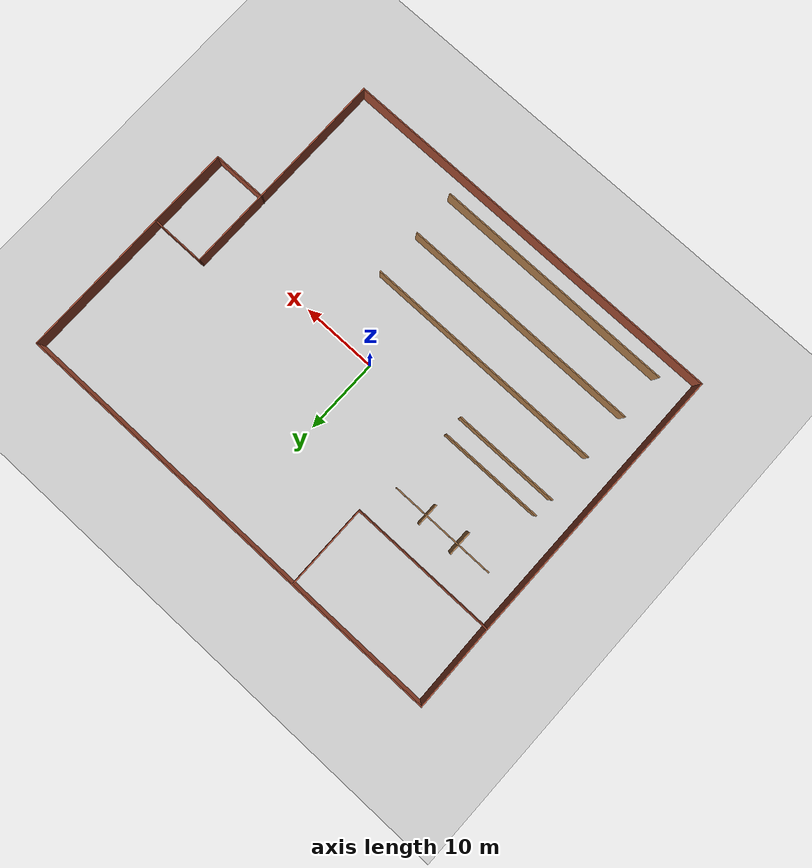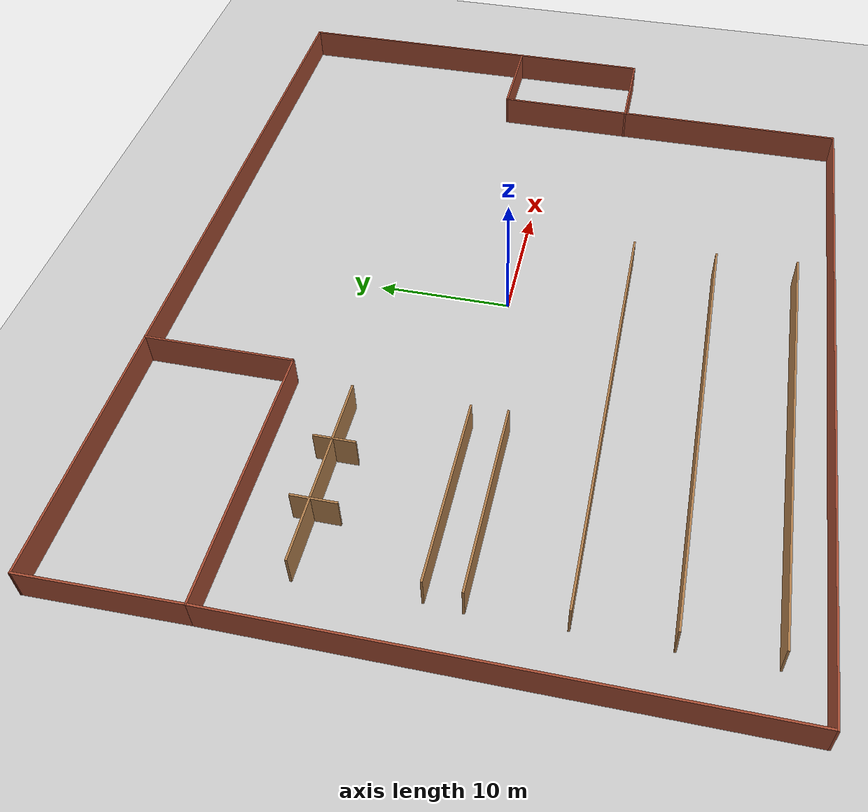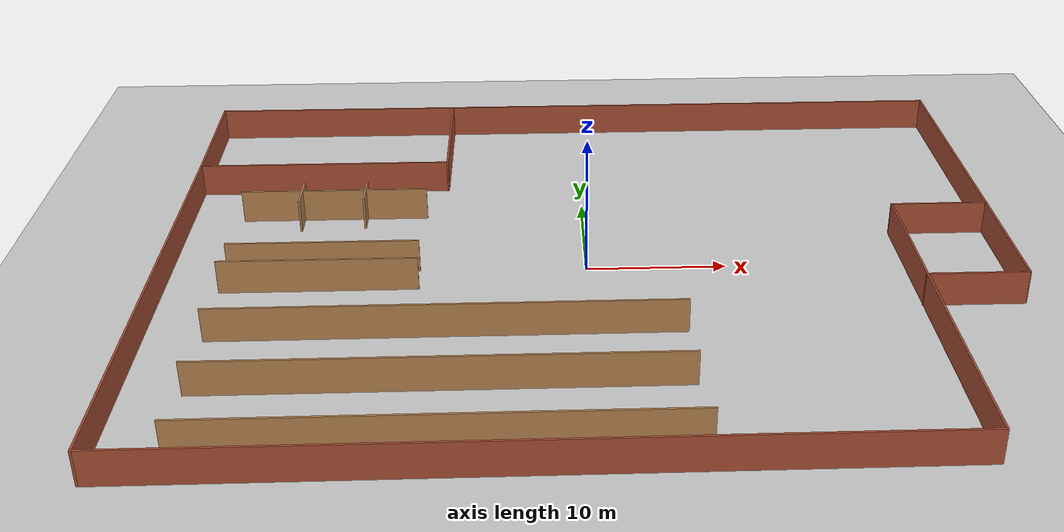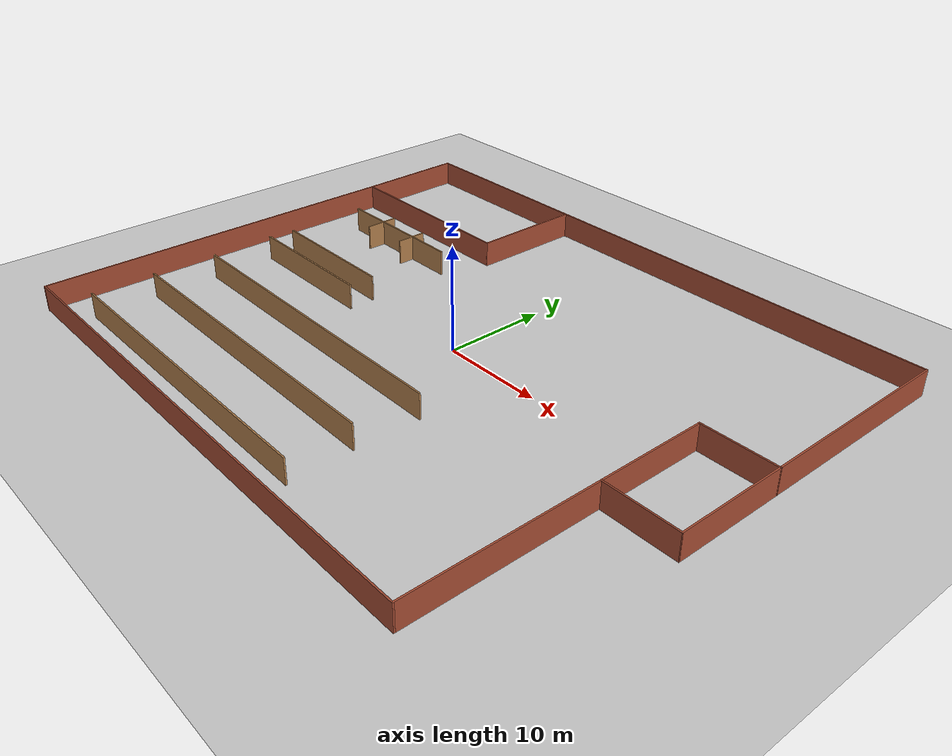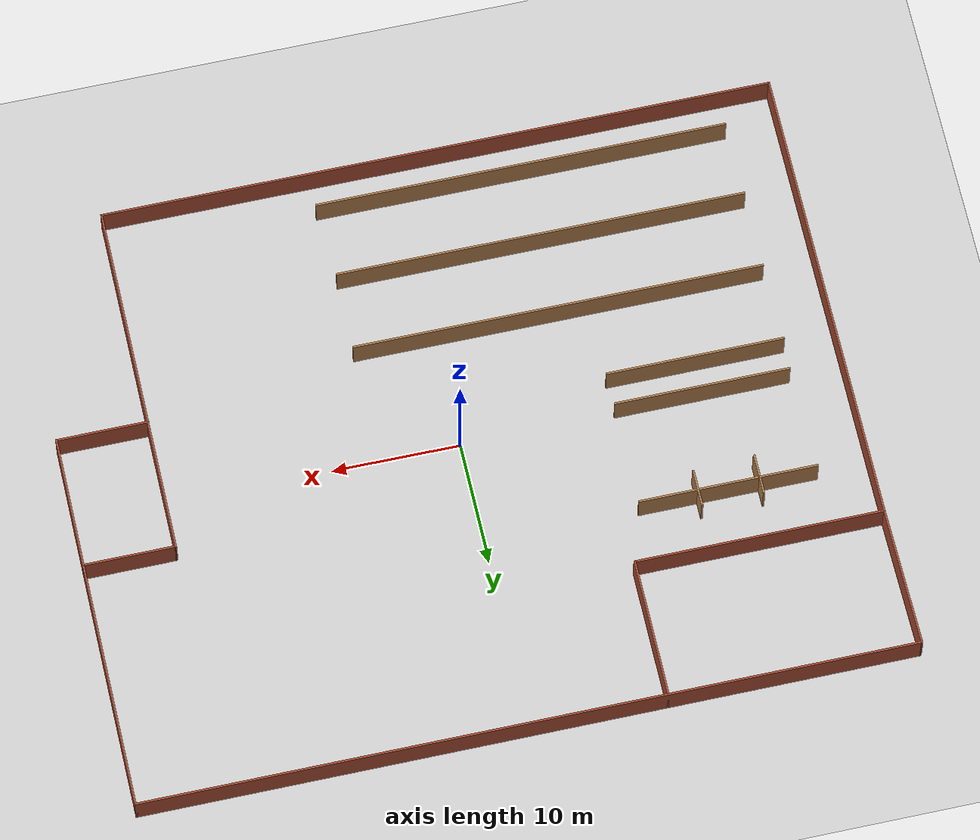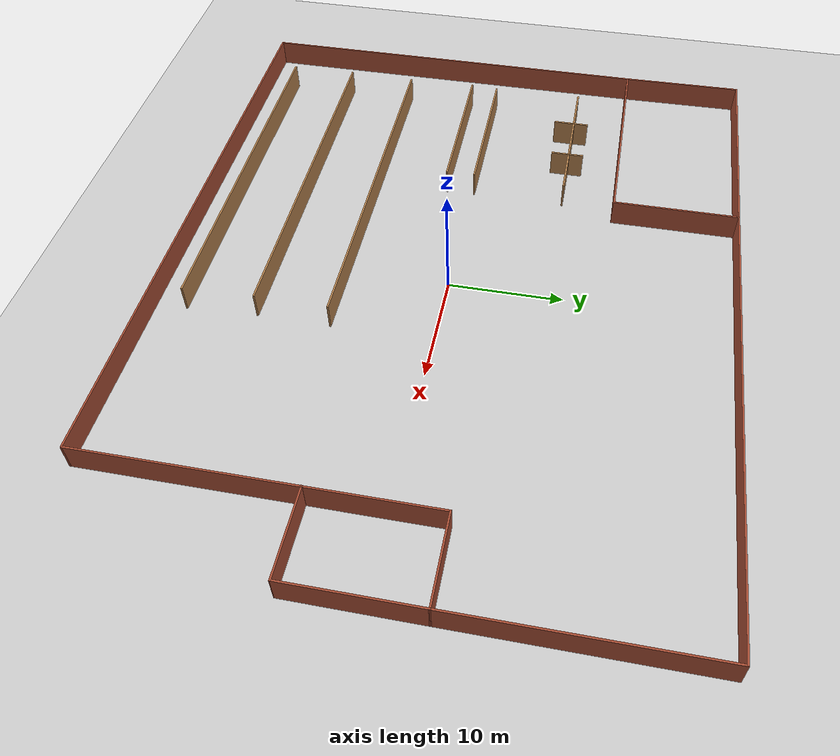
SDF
<sdf version="1.7">
 <world name="default">
  <light name="sun" type="directional">
   <pose>0 0 10 0 -0 0</pose>
   <diffuse>0.8 0.8 0.8 1</diffuse>
   <specular>0.2 0.2 0.2 1</specular>
   <attenuation>
    <range>1000</range>
    <constant>0.9</constant>
    <linear>0.01</linear>
    <quadratic>0.001</quadratic>
   </attenuation>
   <direction>-0.5 0.1 -0.9</direction>
  </light>
  <model name="ground_plane">
   <static>1</static>
   <link name="link">
    <collision name="collision">
     <geometry><plane><normal>0 0 1</normal><size>100 100</size></plane></geometry>
     <surface><friction><ode><mu>100</mu><mu2>50</mu2></ode></friction></surface>
    </collision>
    <visual name="visual">
     <cast_shadows>0</cast_shadows>
     <geometry><plane><normal>0 0 1</normal><size>100 100</size></plane></geometry>
     <material>
      <script><uri>file://media/materials/scripts/gazebo.material</uri><name>Gazebo/Grey</name></script>
     </material>
    </visual>
   </link>
  </model>
  <gravity>0 0 -9.8</gravity>
  <magnetic_field>6e-06 2.3e-05 -4.2e-05</magnetic_field>
  <atmosphere type="adiabatic"/>
  <physics type="ode">
   <max_step_size>0.001</max_step_size>
   <real_time_factor>1</real_time_factor>
   <real_time_update_rate>1000</real_time_update_rate>
  </physics>
  <scene><ambient>0.4 0.4 0.4 1</ambient><background>0.7 0.7 0.7 1</background><shadows>1</shadows></scene>
  <spherical_coordinates>
   <surface_model>EARTH_WGS84</surface_model>
   <latitude_deg>0</latitude_deg>
   <longitude_deg>0</longitude_deg>
   <elevation>0</elevation>
   <heading_deg>0</heading_deg>
  </spherical_coordinates>
  <model name="simple_world">
   <pose>0.039826 0.211408 0 0 -0 0</pose>
   <link name="Wall_0">
    <collision name="Wall_0_Collision">
     <geometry><box><size>60.25 0.15 2.5</size></box></geometry>
     <pose>0 0 1.25 0 -0 0</pose>
    </collision>
    <visual name="Wall_0_Visual">
     <pose>0 0 1.25 0 -0 0</pose>
     <geometry><box><size>60.25 0.15 2.5</size></box></geometry>
     <material>
      <script><uri>file://media/materials/scripts/gazebo.material</uri><name>Gazebo/Bricks</name></script>
      <ambient>1 1 1 1</ambient>
     </material>
     <meta><layer>0</layer></meta>
    </visual>
    <pose>0.000416 24.2245 0 0 -0 0</pose>
   </link>
   <link name="Wall_1">
    <collision name="Wall_1_Collision">
     <geometry><box><size>20 0.15 2.5</size></box></geometry>
     <pose>0 0 1.25 0 -0 0</pose>
    </collision>
    <visual name="Wall_1_Visual">
     <pose>0 0 1.25 0 -0 0</pose>
     <geometry><box><size>20 0.15 2.5</size></box></geometry>
     <material>
      <script><uri>file://media/materials/scripts/gazebo.material</uri><name>Gazebo/Bricks</name></script>
      <ambient>1 1 1 1</ambient>
     </material>
     <meta><layer>0</layer></meta>
    </visual>
    <pose>30.0504 14.2995 0 0 -0 -1.5708</pose>
   </link>
   <link name="Wall_11">
    <collision name="Wall_11_Collision">
     <geometry><box><size>7.25 0.15 2.5</size></box></geometry>
     <pose>0 0 1.25 0 -0 0</pose>
    </collision>
    <visual name="Wall_11_Visual">
     <pose>0 0 1.25 0 -0 0</pose>
     <geometry><box><size>7.25 0.15 2.5</size></box></geometry>
     <material>
      <script><uri>file://media/materials/scripts/gazebo.material</uri><name>Gazebo/Bricks</name></script>
      <ambient>1 1 1 1</ambient>
     </material>
     <meta><layer>0</layer></meta>
    </visual>
    <pose>26.4759 -6.2318 0 0 -0 0</pose>
   </link>
   <link name="Wall_12">
    <collision name="Wall_12_Collision">
     <geometry><box><size>10.7563 0.15 2.5</size></box></geometry>
     <pose>0 0 1.25 0 -0 0</pose>
    </collision>
    <visual name="Wall_12_Visual">
     <pose>0 0 1.25 0 -0 0</pose>
     <geometry><box><size>10.7563 0.15 2.5</size></box></geometry>
     <material>
      <script><uri>file://media/materials/scripts/gazebo.material</uri><name>Gazebo/Bricks</name></script>
      <ambient>1 1 1 1</ambient>
     </material>
     <meta><layer>0</layer></meta>
    </visual>
    <pose>30.0382 -0.928652 0 0 -0 1.56849</pose>
   </link>
   <link name="Wall_14">
    <collision name="Wall_14_Collision">
     <geometry><box><size>14 0.15 2.5</size></box></geometry>
     <pose>0 0 1.25 0 -0 0</pose>
    </collision>
    <visual name="Wall_14_Visual">
     <pose>0 0 1.25 0 -0 0</pose>
     <geometry><box><size>14 0.15 2.5</size></box></geometry>
     <material>
      <script><uri>file://media/materials/scripts/gazebo.material</uri><name>Gazebo/Wood</name></script>
      <ambient>1 1 1 1</ambient>
     </material>
     <meta><layer>0</layer></meta>
    </visual>
    <pose>-18.9407 8.35031 0 0 -0 0</pose>
   </link>
   <link name="Wall_16">
    <collision name="Wall_16_Collision">
     <geometry><box><size>3.25 0.15 2.5</size></box></geometry>
     <pose>0 0 1.25 0 -0 0</pose>
    </collision>
    <visual name="Wall_16_Visual">
     <pose>0 0 1.25 0 -0 0</pose>
     <geometry><box><size>3.25 0.15 2.5</size></box></geometry>
     <material>
      <script><uri>file://media/materials/scripts/gazebo.material</uri><name>Gazebo/Wood</name></script>
      <ambient>1 1 1 1</ambient>
     </material>
     <meta><layer>0</layer></meta>
    </visual>
    <pose>-21.3742 8.09239 0 0 -0 -1.5708</pose>
   </link>
   <link name="Wall_18">
    <collision name="Wall_18_Collision">
     <geometry><box><size>3 0.15 2.5</size></box></geometry>
     <pose>0 0 1.25 0 -0 0</pose>
    </collision>
    <visual name="Wall_18_Visual">
     <pose>0 0 1.25 0 -0 0</pose>
     <geometry><box><size>3 0.15 2.5</size></box></geometry>
     <material>
      <script><uri>file://media/materials/scripts/gazebo.material</uri><name>Gazebo/Wood</name></script>
      <ambient>1 1 1 1</ambient>
     </material>
     <meta><layer>0</layer></meta>
    </visual>
    <pose>-16.575 8.21739 0 0 -0 -1.5708</pose>
   </link>
   <link name="Wall_2">
    <collision name="Wall_2_Collision">
     <geometry><box><size>7.25 0.15 2.5</size></box></geometry>
     <pose>0 0 1.25 0 -0 0</pose>
    </collision>
    <visual name="Wall_2_Visual">
     <pose>0 0 1.25 0 -0 0</pose>
     <geometry><box><size>7.25 0.15 2.5</size></box></geometry>
     <material>
      <script><uri>file://media/materials/scripts/gazebo.material</uri><name>Gazebo/Bricks</name></script>
      <ambient>1 1 1 1</ambient>
     </material>
     <meta><layer>0</layer></meta>
    </visual>
    <pose>26.5004 4.3745 0 0 -0 3.14159</pose>
   </link>
   <link name="Wall_20">
    <collision name="Wall_20_Collision">
     <geometry><box><size>14 0.15 2.5</size></box></geometry>
     <pose>0 0 1.25 0 -0 0</pose>
    </collision>
    <visual name="Wall_20_Visual">
     <pose>0 0 1.25 0 -0 0</pose>
     <geometry><box><size>14 0.15 2.5</size></box></geometry>
     <material>
      <script><uri>file://media/materials/scripts/gazebo.material</uri><name>Gazebo/Wood</name></script>
      <ambient>1 1 1 1</ambient>
     </material>
     <meta><layer>0</layer></meta>
    </visual>
    <pose>-18.9407 -2.60166 0 0 -0 0</pose>
   </link>
   <link name="Wall_22">
    <collision name="Wall_22_Collision">
     <geometry><box><size>13.75 0.15 2.5</size></box></geometry>
     <pose>0 0 1.25 0 -0 0</pose>
    </collision>
    <visual name="Wall_22_Visual">
     <pose>0 0 1.25 0 -0 0</pose>
     <geometry><box><size>13.75 0.15 2.5</size></box></geometry>
     <material>
      <script><uri>file://media/materials/scripts/gazebo.material</uri><name>Gazebo/Wood</name></script>
      <ambient>1 1 1 1</ambient>
     </material>
     <meta><layer>0</layer></meta>
    </visual>
    <pose>-18.8811 -0.017486 0 0 -0 0</pose>
   </link>
   <link name="Wall_24">
    <collision name="Wall_24_Collision">
     <geometry><box><size>32.25 0.15 2.5</size></box></geometry>
     <pose>0 0 1.25 0 -0 0</pose>
    </collision>
    <visual name="Wall_24_Visual">
     <pose>0 0 1.25 0 -0 0</pose>
     <geometry><box><size>32.25 0.15 2.5</size></box></geometry>
     <material>
      <script><uri>file://media/materials/scripts/gazebo.material</uri><name>Gazebo/Wood</name></script>
      <ambient>1 1 1 1</ambient>
     </material>
     <meta><layer>0</layer></meta>
    </visual>
    <pose>-9.69263 -9.00056 0 0 -0 0</pose>
   </link>
   <link name="Wall_26">
    <collision name="Wall_26_Collision">
     <geometry><box><size>32.25 0.15 2.5</size></box></geometry>
     <pose>0 0 1.25 0 -0 0</pose>
    </collision>
    <visual name="Wall_26_Visual">
     <pose>0 0 1.25 0 -0 0</pose>
     <geometry><box><size>32.25 0.15 2.5</size></box></geometry>
     <material>
      <script><uri>file://media/materials/scripts/gazebo.material</uri><name>Gazebo/Wood</name></script>
      <ambient>1 1 1 1</ambient>
     </material>
     <meta><layer>0</layer></meta>
    </visual>
    <pose>-9.75416 -15.3379 0 0 -0 0</pose>
   </link>
   <link name="Wall_28">
    <collision name="Wall_28_Collision">
     <geometry><box><size>32.5 0.15 2.5</size></box></geometry>
     <pose>0 0 1.25 0 -0 0</pose>
    </collision>
    <visual name="Wall_28_Visual">
     <pose>0 0 1.25 0 -0 0</pose>
     <geometry><box><size>32.5 0.15 2.5</size></box></geometry>
     <material>
      <script><uri>file://media/materials/scripts/gazebo.material</uri><name>Gazebo/Wood</name></script>
      <ambient>1 1 1 1</ambient>
     </material>
     <meta><layer>0</layer></meta>
    </visual>
    <pose>-9.56763 -21.4907 0 0 -0 0</pose>
   </link>
   <link name="Wall_3">
    <collision name="Wall_3_Collision">
     <geometry><box><size>28.75 0.15 2.5</size></box></geometry>
     <pose>0 0 1.25 0 -0 0</pose>
    </collision>
    <visual name="Wall_3_Visual">
     <pose>0 0 1.25 0 -0 0</pose>
     <geometry><box><size>28.75 0.15 2.5</size></box></geometry>
     <material>
      <script><uri>file://media/materials/scripts/gazebo.material</uri><name>Gazebo/Bricks</name></script>
      <ambient>1 1 1 1</ambient>
     </material>
     <meta><layer>0</layer></meta>
    </visual>
    <pose>22.9504 -9.9255 0 0 -0 -1.5708</pose>
   </link>
   <link name="Wall_4">
    <collision name="Wall_4_Collision">
     <geometry><box><size>53 0.15 2.5</size></box></geometry>
     <pose>0 0 1.25 0 -0 0</pose>
    </collision>
    <visual name="Wall_4_Visual">
     <pose>0 0 1.25 0 -0 0</pose>
     <geometry><box><size>53 0.15 2.5</size></box></geometry>
     <material>
      <script><uri>file://media/materials/scripts/gazebo.material</uri><name>Gazebo/Bricks</name></script>
      <ambient>1 1 1 1</ambient>
     </material>
     <meta><layer>0</layer></meta>
    </visual>
    <pose>-3.47458 -24.2255 0 0 -0 3.14159</pose>
   </link>
   <link name="Wall_5">
    <collision name="Wall_5_Collision">
     <geometry><box><size>37.5 0.15 2.5</size></box></geometry>
     <pose>0 0 1.25 0 -0 0</pose>
    </collision>
    <visual name="Wall_5_Visual">
     <pose>0 0 1.25 0 -0 0</pose>
     <geometry><box><size>37.5 0.15 2.5</size></box></geometry>
     <material>
      <script><uri>file://media/materials/scripts/gazebo.material</uri><name>Gazebo/Bricks</name></script>
      <ambient>1 1 1 1</ambient>
     </material>
     <meta><layer>0</layer></meta>
    </visual>
    <pose>-29.8996 -5.5505 0 0 -0 1.5708</pose>
   </link>
   <link name="Wall_6">
    <collision name="Wall_6_Collision">
     <geometry><box><size>19.5 0.15 2.5</size></box></geometry>
     <pose>0 0 1.25 0 -0 0</pose>
    </collision>
    <visual name="Wall_6_Visual">
     <pose>0 0 1.25 0 -0 0</pose>
     <geometry><box><size>19.5 0.15 2.5</size></box></geometry>
     <material>
      <script><uri>file://media/materials/scripts/gazebo.material</uri><name>Gazebo/Bricks</name></script>
      <ambient>1 1 1 1</ambient>
     </material>
     <meta><layer>0</layer></meta>
    </visual>
    <pose>-20.2246 13.1245 0 0 -0 0</pose>
   </link>
   <link name="Wall_7">
    <collision name="Wall_7_Collision">
     <geometry><box><size>11.25 0.15 2.5</size></box></geometry>
     <pose>0 0 1.25 0 -0 0</pose>
    </collision>
    <visual name="Wall_7_Visual">
     <pose>0 0 1.25 0 -0 0</pose>
     <geometry><box><size>11.25 0.15 2.5</size></box></geometry>
     <material>
      <script><uri>file://media/materials/scripts/gazebo.material</uri><name>Gazebo/Bricks</name></script>
      <ambient>1 1 1 1</ambient>
     </material>
     <meta><layer>0</layer></meta>
    </visual>
    <pose>-10.5496 18.6745 0 0 -0 1.5708</pose>
   </link>
   <link name="Wall_9">
    <collision name="Wall_9_Collision">
     <geometry><box><size>11.251 0.15 2.5</size></box></geometry>
     <pose>0 0 1.25 0 -0 0</pose>
    </collision>
    <visual name="Wall_9_Visual">
     <pose>0 0 1.25 0 -0 0</pose>
     <geometry><box><size>11.251 0.15 2.5</size></box></geometry>
     <material>
      <script><uri>file://media/materials/scripts/gazebo.material</uri><name>Gazebo/Bricks</name></script>
      <ambient>1 1 1 1</ambient>
     </material>
     <meta><layer>0</layer></meta>
    </visual>
    <pose>-29.9746 18.6745 0 0 -0 -1.55728</pose>
   </link>
   <static>1</static>
  </model>
 </world>
</sdf>
